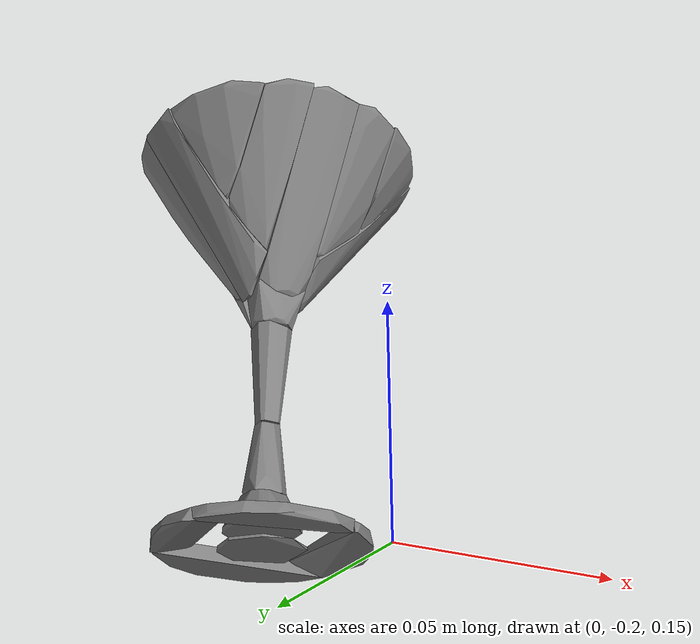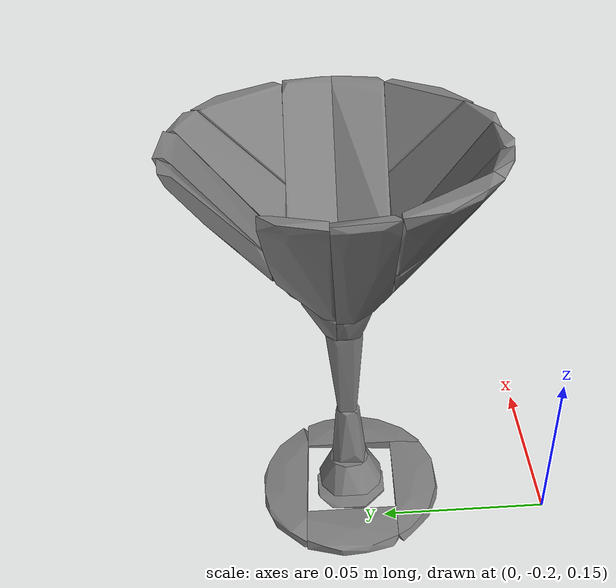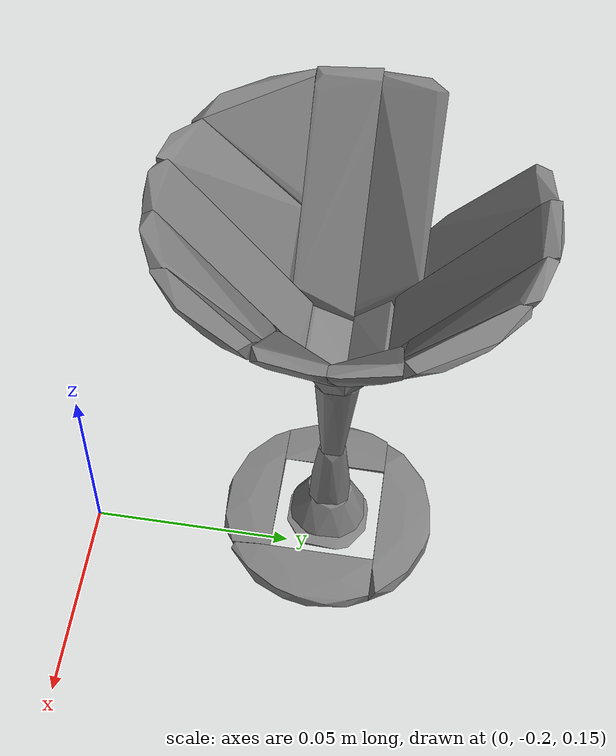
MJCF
<mujoco model="glass">

    <asset>
        <mesh file="/home/jianrenw/prox/tslam/mj_envs/mj_envs/envs/hand_manipulation_suite/assets/stl/C_Shape_2.stl" name="glass" scale="0.015 0.015 0.015"/>
        <mesh file="/home/jianrenw/prox/tslam/mj_envs/mj_envs/envs/hand_manipulation_suite/assets/stl/C_Shape_2/C_Shape_2_hull_1.stl" name="contact1" scale="0.015 0.015 0.015"/>
        <mesh file="/home/jianrenw/prox/tslam/mj_envs/mj_envs/envs/hand_manipulation_suite/assets/stl/C_Shape_2/C_Shape_2_hull_2.stl" name="contact2" scale="0.015 0.015 0.015"/>
        <mesh file="/home/jianrenw/prox/tslam/mj_envs/mj_envs/envs/hand_manipulation_suite/assets/stl/C_Shape_2/C_Shape_2_hull_3.stl" name="contact3" scale="0.015 0.015 0.015"/>
        <mesh file="/home/jianrenw/prox/tslam/mj_envs/mj_envs/envs/hand_manipulation_suite/assets/stl/C_Shape_2/C_Shape_2_hull_4.stl" name="contact4" scale="0.015 0.015 0.015"/>
        <mesh file="/home/jianrenw/prox/tslam/mj_envs/mj_envs/envs/hand_manipulation_suite/assets/stl/C_Shape_2/C_Shape_2_hull_5.stl" name="contact5" scale="0.015 0.015 0.015"/>
        <mesh file="/home/jianrenw/prox/tslam/mj_envs/mj_envs/envs/hand_manipulation_suite/assets/stl/C_Shape_2/C_Shape_2_hull_6.stl" name="contact6" scale="0.015 0.015 0.015"/>
        <mesh file="/home/jianrenw/prox/tslam/mj_envs/mj_envs/envs/hand_manipulation_suite/assets/stl/C_Shape_2/C_Shape_2_hull_7.stl" name="contact7" scale="0.015 0.015 0.015"/>
        <mesh file="/home/jianrenw/prox/tslam/mj_envs/mj_envs/envs/hand_manipulation_suite/assets/stl/C_Shape_2/C_Shape_2_hull_8.stl" name="contact8" scale="0.015 0.015 0.015"/>
        <mesh file="/home/jianrenw/prox/tslam/mj_envs/mj_envs/envs/hand_manipulation_suite/assets/stl/C_Shape_2/C_Shape_2_hull_9.stl" name="contact9" scale="0.015 0.015 0.015"/>
        <mesh file="/home/jianrenw/prox/tslam/mj_envs/mj_envs/envs/hand_manipulation_suite/assets/stl/C_Shape_2/C_Shape_2_hull_10.stl" name="contact10" scale="0.015 0.015 0.015"/>
        <mesh file="/home/jianrenw/prox/tslam/mj_envs/mj_envs/envs/hand_manipulation_suite/assets/stl/C_Shape_2/C_Shape_2_hull_11.stl" name="contact11" scale="0.015 0.015 0.015"/>
        <mesh file="/home/jianrenw/prox/tslam/mj_envs/mj_envs/envs/hand_manipulation_suite/assets/stl/C_Shape_2/C_Shape_2_hull_12.stl" name="contact12" scale="0.015 0.015 0.015"/>
        <mesh file="/home/jianrenw/prox/tslam/mj_envs/mj_envs/envs/hand_manipulation_suite/assets/stl/C_Shape_2/C_Shape_2_hull_13.stl" name="contact13" scale="0.015 0.015 0.015"/>
        <mesh file="/home/jianrenw/prox/tslam/mj_envs/mj_envs/envs/hand_manipulation_suite/assets/stl/C_Shape_2/C_Shape_2_hull_14.stl" name="contact14" scale="0.015 0.015 0.015"/>
        <mesh file="/home/jianrenw/prox/tslam/mj_envs/mj_envs/envs/hand_manipulation_suite/assets/stl/C_Shape_2/C_Shape_2_hull_15.stl" name="contact15" scale="0.015 0.015 0.015"/>
        <mesh file="/home/jianrenw/prox/tslam/mj_envs/mj_envs/envs/hand_manipulation_suite/assets/stl/C_Shape_2/C_Shape_2_hull_16.stl" name="contact16" scale="0.015 0.015 0.015"/>
        <mesh file="/home/jianrenw/prox/tslam/mj_envs/mj_envs/envs/hand_manipulation_suite/assets/stl/C_Shape_2/C_Shape_2_hull_17.stl" name="contact17" scale="0.015 0.015 0.015"/>
        <mesh file="/home/jianrenw/prox/tslam/mj_envs/mj_envs/envs/hand_manipulation_suite/assets/stl/C_Shape_2/C_Shape_2_hull_18.stl" name="contact18" scale="0.015 0.015 0.015"/>
        <mesh file="/home/jianrenw/prox/tslam/mj_envs/mj_envs/envs/hand_manipulation_suite/assets/stl/C_Shape_2/C_Shape_2_hull_19.stl" name="contact19" scale="0.015 0.015 0.015"/>
        <mesh file="/home/jianrenw/prox/tslam/mj_envs/mj_envs/envs/hand_manipulation_suite/assets/stl/C_Shape_2/C_Shape_2_hull_20.stl" name="contact20" scale="0.015 0.015 0.015"/>
        <mesh file="/home/jianrenw/prox/tslam/mj_envs/mj_envs/envs/hand_manipulation_suite/assets/stl/C_Shape_2/C_Shape_2_hull_21.stl" name="contact21" scale="0.015 0.015 0.015"/>
        <mesh file="/home/jianrenw/prox/tslam/mj_envs/mj_envs/envs/hand_manipulation_suite/assets/stl/C_Shape_2/C_Shape_2_hull_22.stl" name="contact22" scale="0.015 0.015 0.015"/>
        <mesh file="/home/jianrenw/prox/tslam/mj_envs/mj_envs/envs/hand_manipulation_suite/assets/stl/C_Shape_2/C_Shape_2_hull_23.stl" name="contact23" scale="0.015 0.015 0.015"/>
    </asset>

    <worldbody>
        <body name="object" pos="0 -0.14 0.22" >
            <!--geom name="glass_visual" type="mesh" contype="0" conaffinity="0" mass="0" group="1" mesh="glass" rgba="1 0 0 1.0" /-->
            <geom name="glass_contact1" mesh="contact1" type="mesh"/>
            <geom name="glass_contact2" mesh="contact2" type="mesh"/>
            <geom name="glass_contact3" mesh="contact3" type="mesh"/>
            <geom name="glass_contact4" mesh="contact4" type="mesh"/>
            <geom name="glass_contact5" mesh="contact5" type="mesh"/>
            <geom name="glass_contact6" mesh="contact6" type="mesh"/>
            <geom name="glass_contact7" mesh="contact7" type="mesh"/>
            <geom name="glass_contact8" mesh="contact8" type="mesh"/>
            <geom name="glass_contact9" mesh="contact9" type="mesh"/>
            <geom name="glass_contact10" mesh="contact10" type="mesh"/>
            <geom name="glass_contact11" mesh="contact11" type="mesh"/>
            <geom name="glass_contact12" mesh="contact12" type="mesh"/>
            <geom name="glass_contact13" mesh="contact13" type="mesh"/>
            <geom name="glass_contact14" mesh="contact14" type="mesh"/>
            <geom name="glass_contact15" mesh="contact15" type="mesh"/>
            <geom name="glass_contact16" mesh="contact16" type="mesh"/>
            <geom name="glass_contact17" mesh="contact17" type="mesh"/>
            <geom name="glass_contact18" mesh="contact18" type="mesh"/>
            <geom name="glass_contact19" mesh="contact19" type="mesh"/>
            <geom name="glass_contact20" mesh="contact20" type="mesh"/>
            <geom name="glass_contact21" mesh="contact21" type="mesh"/>
            <geom name="glass_contact22" mesh="contact22" type="mesh"/>
            <geom name="glass_contact23" mesh="contact23" type="mesh"/>
        </body>
    </worldbody>
</mujoco>
